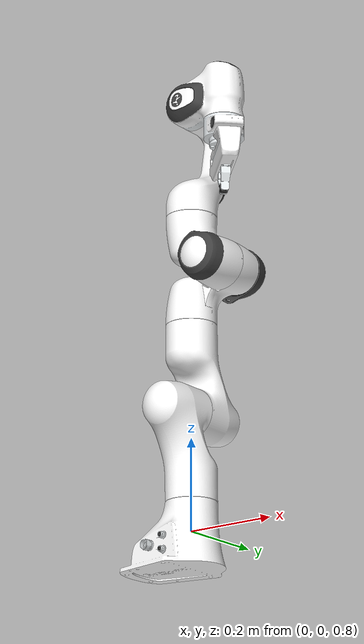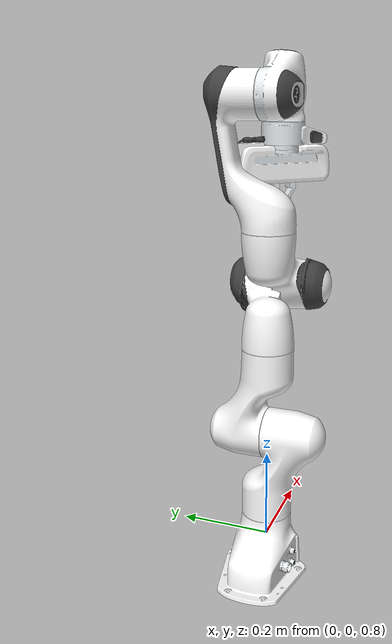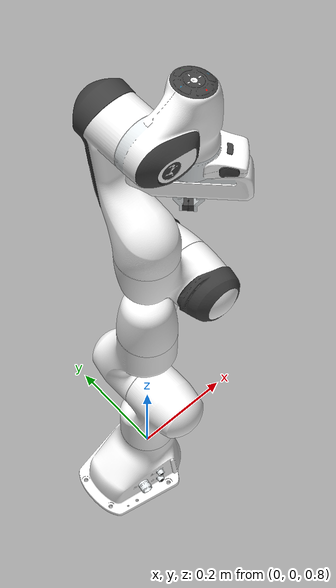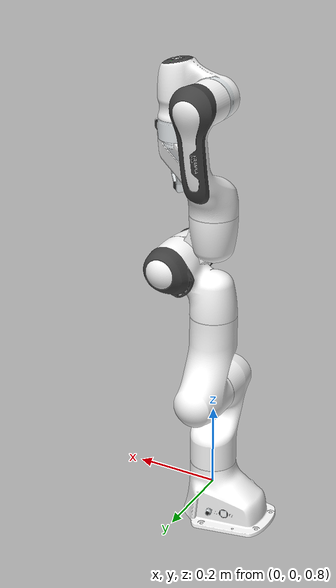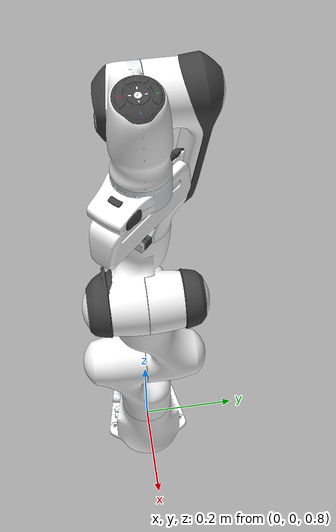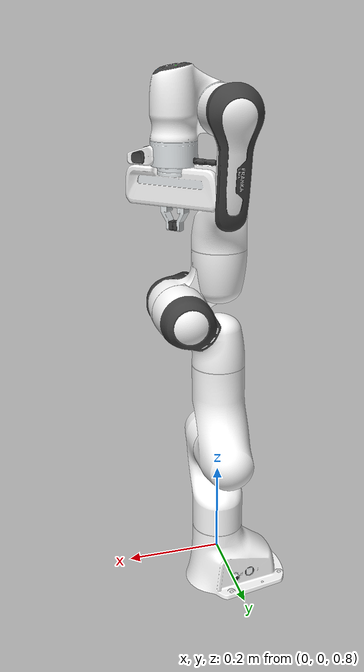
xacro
<?xml version="1.0"?>
<robot name="panda" xmlns:xacro="http://www.ros.org/wiki/xacro">
  <xacro:include filename="$(find panda_manipulation)/urdf/panda_balanced.urdf.xacro"/>

  <link name="world"/>
  <joint name="panda_world_joint" type="fixed">
    <parent link="world"/>
    <child link="panda_link0"/>
    <origin xyz="0 0 0.72" rpy="0 0 0"/>
  </joint>

  <ros2_control name="GazeboSimSystem" type="system">
    <hardware>
      <plugin>gz_ros2_control/GazeboSimSystem</plugin>
    </hardware>

    <joint name="panda_joint1">
      <command_interface name="position"/>
      <state_interface name="position"><param name="initial_value">0.0</param></state_interface>
      <state_interface name="velocity"/>
    </joint>
    <joint name="panda_joint2">
      <command_interface name="position"/>
      <state_interface name="position"><param name="initial_value">-0.785</param></state_interface>
      <state_interface name="velocity"/>
    </joint>
    <joint name="panda_joint3">
      <command_interface name="position"/>
      <state_interface name="position"><param name="initial_value">0.0</param></state_interface>
      <state_interface name="velocity"/>
    </joint>
    <joint name="panda_joint4">
      <command_interface name="position"/>
      <state_interface name="position"><param name="initial_value">-2.356</param></state_interface>
      <state_interface name="velocity"/>
    </joint>
    <joint name="panda_joint5">
      <command_interface name="position"/>
      <state_interface name="position"><param name="initial_value">0.0</param></state_interface>
      <state_interface name="velocity"/>
    </joint>
    <joint name="panda_joint6">
      <command_interface name="position"/>
      <state_interface name="position"><param name="initial_value">1.571</param></state_interface>
      <state_interface name="velocity"/>
    </joint>
    <joint name="panda_joint7">
      <command_interface name="position"/>
      <state_interface name="position"><param name="initial_value">0.785</param></state_interface>
      <state_interface name="velocity"/>
    </joint>

    <joint name="panda_finger_joint1">
      <command_interface name="effort">
        <param name="min">-20.0</param>
        <param name="max">20.0</param>
      </command_interface>
      <state_interface name="position"><param name="initial_value">0.04</param></state_interface>
      <state_interface name="velocity"/>
      <state_interface name="effort"/>
    </joint>
    <joint name="panda_finger_joint2">
      <command_interface name="effort">
        <param name="min">-20.0</param>
        <param name="max">20.0</param>
      </command_interface>
      <state_interface name="position"><param name="initial_value">0.04</param></state_interface>
      <state_interface name="velocity"/>
      <state_interface name="effort"/>
    </joint>
  </ros2_control>

  <gazebo>
    <plugin filename="libgz_ros2_control-system.so"
            name="gz_ros2_control::GazeboSimROS2ControlPlugin">
      <parameters>$(find panda_manipulation)/config/gazebo_controllers.yaml</parameters>
      <hold_joints>true</hold_joints>
      <position_proportional_gain>0.5</position_proportional_gain>
    </plugin>
  </gazebo>

  <gazebo reference="panda_leftfinger">
    <mu1>5.0</mu1>
    <mu2>5.0</mu2>
    <kp>1000000.0</kp>
    <kd>10.0</kd>
    <minDepth>0.0005</minDepth>
    <maxVel>0.02</maxVel>
  </gazebo>
  <gazebo reference="panda_rightfinger">
    <mu1>5.0</mu1>
    <mu2>5.0</mu2>
    <kp>1000000.0</kp>
    <kd>10.0</kd>
    <minDepth>0.0005</minDepth>
    <maxVel>0.02</maxVel>
  </gazebo>
</robot>

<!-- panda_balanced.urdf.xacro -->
<!-- |    This document was autogenerated by xacro from /opt/ros/kinetic/share/moveit_resources/panda_description/urdf/panda.urdf | -->
<!-- |    EDITING THIS FILE BY HAND IS NOT RECOMMENDED                                 | -->
<robot name="panda" xmlns:xacro="http://www.ros.org/wiki/xacro">\n    <!-- Vendored from moveit_resources_panda_description (ROS 2 Jazzy).\n         The upstream right-finger mass is corrected from 0.15 kg to the\n         symmetric 0.015 kg used by the left finger. -->
    <link name="panda_link0">
        <visual>
            <geometry>
                <mesh filename="file://$(find moveit_resources_panda_description)/meshes/visual/link0.dae" />
            </geometry>
        </visual>
        <collision>
            <geometry>
                <mesh filename="file://$(find moveit_resources_panda_description)/meshes/collision/link0.stl" />
            </geometry>
        </collision>
        <inertial>
          <origin xyz="-0.041018 -0.00014 0.049974" rpy="0 0 0" />
          <mass value="0.629769"/>
          <inertia ixx="0.00315" iyy="0.00388" izz="0.004285" ixy="8.2904E-7" ixz="0.00015" iyz="8.2299E-6"/>
        </inertial>
    </link>
    <link name="panda_link1">
        <visual>
            <geometry>
                <mesh filename="file://$(find moveit_resources_panda_description)/meshes/visual/link1.dae" />
            </geometry>
        </visual>
        <collision>
            <geometry>
                <mesh filename="file://$(find moveit_resources_panda_description)/meshes/collision/link1.stl" />
            </geometry>
        </collision>
        <inertial>
          <origin xyz="0.003875 0.002081 -0.04762" rpy="0 0 0" />
          <mass value="4.970684"/>
          <inertia ixx="0.70337" iyy="0.70661" izz="0.009117" ixy="-0.000139" ixz="0.006772" iyz="0.019169"/>
        </inertial>
    </link>
    <joint name="panda_joint1" type="revolute">
        <safety_controller k_position="100.0" k_velocity="40.0" soft_lower_limit="-2.8973" soft_upper_limit="2.8973" />
        <origin rpy="0 0 0" xyz="0 0 0.333" />
        <parent link="panda_link0" />
        <child link="panda_link1" />
        <axis xyz="0 0 1" />
        <limit effort="87" lower="-2.9671" upper="2.9671" velocity="2.3925" />
        <dynamics D="1" K="7000" damping="0.003" friction="0.0" mu_coulomb="0" mu_viscous="16" />
    </joint>
    <link name="panda_link2">
        <visual>
            <geometry>
                <mesh filename="file://$(find moveit_resources_panda_description)/meshes/visual/link2.dae" />
            </geometry>
        </visual>
        <collision>
            <geometry>
                <mesh filename="file://$(find moveit_resources_panda_description)/meshes/collision/link2.stl" />
            </geometry>
        </collision>
        <inertial>
          <origin xyz="-0.003141 -0.02872  0.003495" rpy="0 0 0" />
          <mass value="0.646926"/>
          <inertia ixx="0.007962" iyy="2.811E-2" izz="2.5995E-2" ixy="-3.925E-3" ixz="1.0254E-2" iyz="7.04E-4"/>
        </inertial>
    </link>
    <joint name="panda_joint2" type="revolute">
        <safety_controller k_position="100.0" k_velocity="40.0" soft_lower_limit="-1.7628" soft_upper_limit="1.7628" />
        <origin rpy="-1.57079632679 0 0" xyz="0 0 0" />
        <parent link="panda_link1" />
        <child link="panda_link2" />
        <axis xyz="0 0 1" />
        <limit effort="87" lower="-1.8326" upper="1.8326" velocity="2.3925" />
        <dynamics D="1" K="7000" damping="0.003" friction="0.0" mu_coulomb="0" mu_viscous="16" />
    </joint>
    <link name="panda_link3">
        <visual>
            <geometry>
                <mesh filename="file://$(find moveit_resources_panda_description)/meshes/visual/link3.dae" />
            </geometry>
        </visual>
        <collision>
            <geometry>
                <mesh filename="file://$(find moveit_resources_panda_description)/meshes/collision/link3.stl" />
            </geometry>
        </collision>
        <inertial>
          <origin xyz="2.7518E-2 3.9252E-2 -6.6502E-2" rpy="0 0 0" />
          <mass value="3.228604"/>
          <inertia ixx="3.7242E-2" iyy="3.6155E-2" izz="1.083E-2" ixy="-4.761E-3" ixz="-1.1396E-2" iyz="-1.2805E-2"/>
        </inertial>
    </link>
    <joint name="panda_joint3" type="revolute">
        <safety_controller k_position="100.0" k_velocity="40.0" soft_lower_limit="-2.8973" soft_upper_limit="2.8973" />
        <origin rpy="1.57079632679 0 0" xyz="0 -0.316 0" />
        <parent link="panda_link2" />
        <child link="panda_link3" />
        <axis xyz="0 0 1" />
        <limit effort="87" lower="-2.9671" upper="2.9671" velocity="2.3925" />
        <dynamics D="1" K="7000" damping="0.003" friction="0.0" mu_coulomb="0" mu_viscous="16" />
    </joint>
    <link name="panda_link4">
        <visual>
            <geometry>
                <mesh filename="file://$(find moveit_resources_panda_description)/meshes/visual/link4.dae" />
            </geometry>
        </visual>
        <collision>
            <geometry>
                <mesh filename="file://$(find moveit_resources_panda_description)/meshes/collision/link4.stl" />
            </geometry>
        </collision>
        <inertial>
          <origin xyz="-5.317E-2 1.04419E-1 2.7454E-2" rpy="0 0 0" />
          <mass value="3.587895"/>
          <inertia ixx="2.5853E-2" iyy="1.9552E-2" izz="2.8323E-2" ixy="7.796E-3" ixz="-1.332E-3" iyz="8.641E-3"/>
        </inertial>
    </link>
    <joint name="panda_joint4" type="revolute">
        <safety_controller k_position="100.0" k_velocity="40.0" soft_lower_limit="-3.0718" soft_upper_limit="0.0175" />
        <origin rpy="1.57079632679 0 0" xyz="0.0825 0 0" />
        <parent link="panda_link3" />
        <child link="panda_link4" />
        <axis xyz="0 0 1" />
        <limit effort="87" lower="-3.1416" upper="0.0873" velocity="2.3925" />
        <dynamics D="1" K="7000" damping="0.003" friction="0.0" mu_coulomb="0" mu_viscous="16" />
    </joint>
    <link name="panda_link5">
        <visual>
            <geometry>
                <mesh filename="file://$(find moveit_resources_panda_description)/meshes/visual/link5.dae" />
            </geometry>
        </visual>
        <collision>
            <geometry>
                <mesh filename="file://$(find moveit_resources_panda_description)/meshes/collision/link5.stl" />
            </geometry>
        </collision>
        <inertial>
          <origin xyz="-1.1953E-2 4.1065E-2 -3.8437E-2" rpy="0 0 0" />
          <mass value="1.225946"/>
          <inertia ixx="3.5549E-2" iyy="2.9474E-2" izz="8.627E-3" ixy="-2.117E-3" ixz="-4.037E-3" iyz="2.29E-4"/>
        </inertial>
    </link>
    <joint name="panda_joint5" type="revolute">
        <safety_controller k_position="100.0" k_velocity="40.0" soft_lower_limit="-2.8973" soft_upper_limit="2.8973" />
        <origin rpy="-1.57079632679 0 0" xyz="-0.0825 0.384 0" />
        <parent link="panda_link4" />
        <child link="panda_link5" />
        <axis xyz="0 0 1" />
        <limit effort="12" lower="-2.9671" upper="2.9671" velocity="2.8710" />
        <dynamics D="1" K="7000" damping="0.003" friction="0.0" mu_coulomb="0" mu_viscous="16" />
    </joint>
    <link name="panda_link6">
        <visual>
            <geometry>
                <mesh filename="file://$(find moveit_resources_panda_description)/meshes/visual/link6.dae" />
            </geometry>
        </visual>
        <collision>
            <geometry>
                <mesh filename="file://$(find moveit_resources_panda_description)/meshes/collision/link6.stl" />
            </geometry>
        </collision>
        <inertial>
          <origin xyz="6.0149E-2 -1.4117E-2 -1.0517E-2" rpy="0 0 0" />
          <mass value="1.666555"/>
          <inertia ixx="1.964E-3" iyy="4.354E-3" izz="5.433E-3" ixy="1.09E-4" ixz="-1.158E-3" iyz="3.41E-4"/>
        </inertial>
    </link>
    <joint name="panda_joint6" type="revolute">
        <safety_controller k_position="100.0" k_velocity="40.0" soft_lower_limit="-0.0175" soft_upper_limit="3.7525" />
        <origin rpy="1.57079632679 0 0" xyz="0 0 0" />
        <parent link="panda_link5" />
        <child link="panda_link6" />
        <axis xyz="0 0 1" />
        <limit effort="12" lower="-0.0873" upper="3.8223" velocity="2.8710" />
        <dynamics D="1" K="7000" damping="0.003" friction="0.0" mu_coulomb="0" mu_viscous="16" />
    </joint>
    <link name="panda_link7">
        <visual>
            <geometry>
                <mesh filename="file://$(find moveit_resources_panda_description)/meshes/visual/link7.dae" />
            </geometry>
        </visual>
        <collision>
            <geometry>
                <mesh filename="file://$(find moveit_resources_panda_description)/meshes/collision/link7.stl" />
            </geometry>
        </collision>
        <inertial>
          <origin xyz="1.0517E-2 -4.252E-3 6.1597E-2" rpy="0 0 0" />
          <mass value="7.35522E-1"/>
          <inertia ixx="1.2516E-2" iyy="1.0027E-2" izz="4.815E-3" ixy="-4.28E-4" ixz="-1.19E-3" iyz="-7.41E-4"/>
        </inertial>
    </link>
    <joint name="panda_joint7" type="revolute">
        <safety_controller k_position="100.0" k_velocity="40.0" soft_lower_limit="-2.8973" soft_upper_limit="2.8973" />
        <origin rpy="1.57079632679 0 0" xyz="0.088 0 0" />
        <parent link="panda_link6" />
        <child link="panda_link7" />
        <axis xyz="0 0 1" />
        <limit effort="12" lower="-2.9671" upper="2.9671" velocity="2.8710" />
        <dynamics D="1" K="7000" damping="0.003" friction="0.0" mu_coulomb="0" mu_viscous="16" />
    </joint>
    <link name="panda_link8" />
    <joint name="panda_joint8" type="fixed">
        <origin rpy="0 0 0" xyz="0 0 0.107" />
        <parent link="panda_link7" />
        <child link="panda_link8" />
        <axis xyz="0 0 0" />
    </joint>
    <joint name="panda_hand_joint" type="fixed">
        <parent link="panda_link8" />
        <child link="panda_hand" />
        <origin rpy="0 0 -0.785398163397" xyz="0 0 0" />
    </joint>
    <link name="panda_hand">
        <visual>
            <geometry>
                <mesh filename="file://$(find moveit_resources_panda_description)/meshes/visual/hand.dae" />
            </geometry>
        </visual>
        <collision>
            <geometry>
                <mesh filename="file://$(find moveit_resources_panda_description)/meshes/collision/hand.stl" />
            </geometry>
        </collision>
        <inertial>
          <origin xyz="-0.01 0 0.03" rpy="0 0 0" />
          <mass value="0.73"/>
          <inertia ixx="0.001" iyy="0.0025" izz="0.0017" ixy="0" ixz="0" iyz="0"/>
        </inertial>
    </link>
    <link name="panda_leftfinger">
        <visual>
            <geometry>
                <mesh filename="file://$(find moveit_resources_panda_description)/meshes/visual/finger.dae" />
            </geometry>
        </visual>
        <collision>
            <geometry>
                <mesh filename="file://$(find moveit_resources_panda_description)/meshes/collision/finger.stl" />
            </geometry>
        </collision>
        <inertial>
          <origin xyz="0 0 0" rpy="0 0 0" />
          <mass value="0.015"/>
          <inertia ixx="2.375E-6" iyy="2.375E-6" izz="7.5E-7" ixy="0" ixz="0" iyz="0"/>
        </inertial>
    </link>
    <link name="panda_rightfinger">
        <visual>
            <origin rpy="0 0 3.14159265359" xyz="0 0 0" />
            <geometry>
                <mesh filename="file://$(find moveit_resources_panda_description)/meshes/visual/finger.dae" />
            </geometry>
        </visual>
        <collision>
            <origin rpy="0 0 3.14159265359" xyz="0 0 0" />
            <geometry>
                <mesh filename="file://$(find moveit_resources_panda_description)/meshes/collision/finger.stl" />
            </geometry>
        </collision>
        <inertial>
          <origin xyz="0 0 0" rpy="0 0 0" />
          <mass value="0.015"/>
          <inertia ixx="2.375E-6" iyy="2.375E-6" izz="7.5E-7" ixy="0" ixz="0" iyz="0"/>
        </inertial>
    </link>
    <joint name="panda_finger_joint1" type="prismatic">
        <parent link="panda_hand" />
        <child link="panda_leftfinger" />
        <origin rpy="0 0 0" xyz="0 0 0.0584" />
        <axis xyz="0 1 0" />
        <limit effort="20" lower="0.0" upper="0.04" velocity="0.2" />
        <dynamics damping="0.3" />
    </joint>
    <joint name="panda_finger_joint2" type="prismatic">
        <parent link="panda_hand" />
        <child link="panda_rightfinger" />
        <origin rpy="0 0 0" xyz="0 0 0.0584" />
        <axis xyz="0 -1 0" />
        <limit effort="20" lower="0.0" upper="0.04" velocity="0.2" />
        <mimic joint="panda_finger_joint1" />
        <dynamics damping="0.3" />
    </joint>
</robot>
